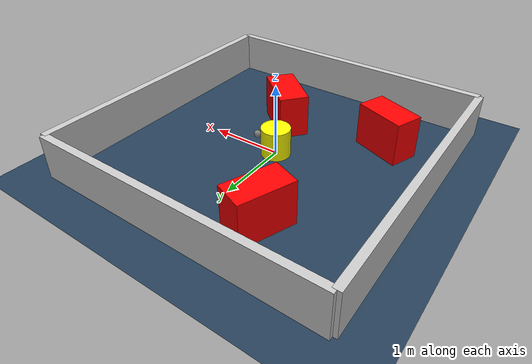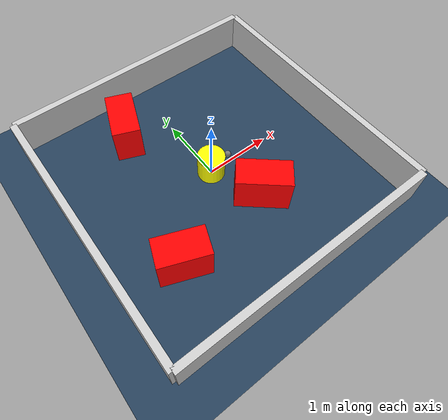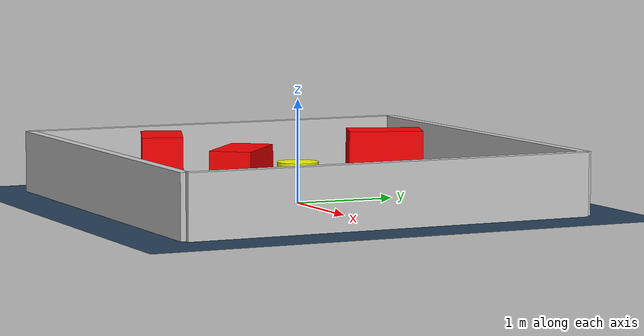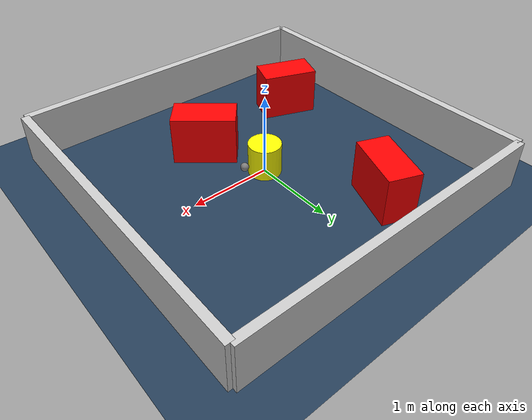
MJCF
<?xml version="1.0" ?>
<mujoco model="generated_environment">
  <option timestep="0.01" integrator="RK4" cone="elliptic"/>
  <default>
    <geom density="1"/>
  </default>
  <asset>
    <texture builtin="gradient" height="3072" rgb1="0.3 0.5 0.7" rgb2="0 0 0" type="skybox" width="512"/>
    <texture builtin="checker" height="300" mark="edge" markrgb="0.8 0.8 0.8" name="groundplane" rgb1="0.2 0.3 0.4" rgb2="0.1 0.2 0.3" type="2d" width="300"/>
    <material name="groundplane" reflectance="0.2" texrepeat="5 5" texture="groundplane" texuniform="true"/>
    <material name="robot" rgba="0.0 1.0 0.0 1"/>
  </asset>
  <worldbody>
    <light dir="0 0 -1" directional="true" pos="0 0 1.5"/>
    <geom condim="4" friction="1.0 0.005 0.001" material="groundplane" name="floor" size="0 0 0.05" type="plane"/>
    <body name="walls">
      <geom name="wall_1" condim="4" pos="-2.0 0.0 0.3" rgba="0.800000011920929 0.800000011920929 0.800000011920929 1.0" size="0.05 2.0 0.3" type="box"/>
      <geom name="wall_2" condim="4" pos="2.0 0.0 0.3" rgba="0.800000011920929 0.800000011920929 0.800000011920929 1.0" size="0.05 2.0 0.3" type="box"/>
      <geom name="wall_3" condim="4" pos="0.0 -2.0 0.3" rgba="0.800000011920929 0.800000011920929 0.800000011920929 1.0" size="2.0 0.05 0.3" type="box"/>
      <geom name="wall_4" condim="4" pos="0.0 2.0 0.3" rgba="0.800000011920929 0.800000011920929 0.800000011920929 1.0" size="2.0 0.05 0.3" type="box"/>
    </body>
    <body name="robot">
      <joint name="joint_x" type="slide" pos="0 0 0" axis="1 0 0"/>
      <joint name="joint_y" type="slide" pos="0 0 0" axis="0 1 0"/>
      <geom name="robot" type="sphere" pos="0.3 0.0 0.2" size="0.05" mass="5." friction="1.0 0.005 0.0001" condim="4" rgba="0.5 0.5 0.5 1.0"/>
      <site name="sensor_ball"/>
    </body>
    <body name="obstacle_movable_1">
      <geom name="obstacle_movable_1" condim="4" pos="0.0 0.0 0.2" euler="0 0 0.0" friction="1.0 0.005 0.001" rgba="1.0 1.0 0.0 1.0" size="0.2 0.2 0.0" type="cylinder" mass="0.1"/>
      <joint type="free"/>
    </body>
    <body name="obstacle_2_static">
      <geom name="obstacle_2_static" condim="4" pos="0.32584749538716307 -0.7367994976977608 0.3" euler="0 0 320.0238933328135" friction="1.0 0.005 0.001" rgba="1 0 0 1" size="0.38343117660875947 0.2 0.3" type="box"/>
    </body>
    <body name="obstacle_3_static">
      <geom name="obstacle_3_static" condim="4" pos="-1.1514287290375034 -0.9377290522572926 0.3" euler="0 0 339.1217841052662" friction="1.0 0.005 0.001" rgba="1 0 0 1" size="0.349629391014863 0.2 0.3" type="box"/>
    </body>
    <body name="obstacle_4_static">
      <geom name="obstacle_4_static" condim="4" pos="-0.6583522888584108 1.2620290250183184 0.3" euler="0 0 68.87937052277343" friction="1.0 0.005 0.001" rgba="1 0 0 1" size="0.3683643398807662 0.2 0.3" type="box"/>
    </body>
  </worldbody>
  <actuator>
    <motor name="actuator_x" joint="joint_x" gear="1" ctrlrange="-1 1"/>
    <motor name="actuator_y" joint="joint_y" gear="1" ctrlrange="-1 1"/>
  </actuator>
</mujoco>
